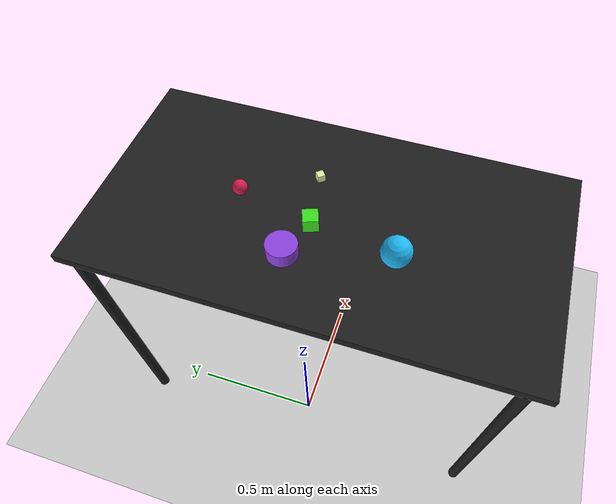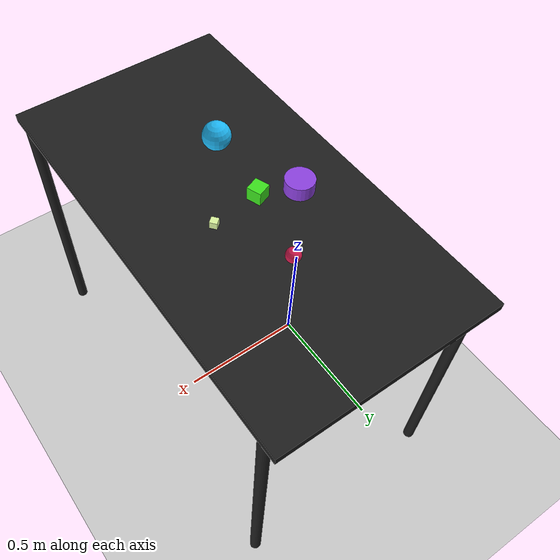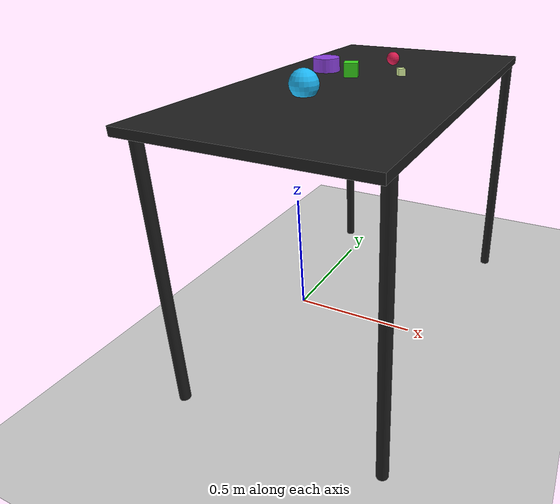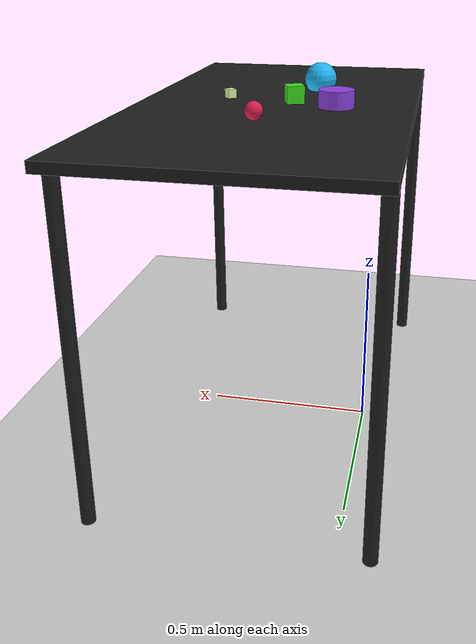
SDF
<?xml version="1.0" ?>
<sdf version="1.6">
  <world name="arm_world">
    <plugin filename="gz-sim-physics-system" name="gz::sim::systems::Physics">
      <engine>
        <filename>libgz-physics-bullet-featherstone-plugin.so</filename>
      </engine>
    </plugin>
    <plugin filename="gz-sim-user-commands-system" name="gz::sim::systems::UserCommands"/>
    <plugin filename="gz-sim-scene-broadcaster-system" name="gz::sim::systems::SceneBroadcaster"/>
    <plugin filename="gz-sim-sensors-system" name="gz::sim::systems::Sensors">
      <render_engine>ogre2</render_engine>
    </plugin>
    <gravity>0.0 0.0 -9.8</gravity>
    <scene>
      <shadows>false</shadows>
    </scene>
    <gui>
      <camera name="user_camera">
        <pose>0.75 -0.75 1.4 0 0.29 2.21</pose>
      </camera>
    </gui>
    <include>
      <uri>https://fuel.gazebosim.org/1.0/OpenRobotics/models/Sun</uri>
    </include>
    <model name="table">
      <static>true</static>
      <include>
        <uri>model://table</uri>
      </include>
      <pose>0.29 0 0 0 0 1.5708</pose>
    </model>
    <model name="ground_plane">
      <static>true</static>
      <link name="link">
        <collision name="collision">
          <geometry>
            <plane>
              <normal>0 0 1</normal>
            </plane>
          </geometry>
          <surface>
            <friction>
              <ode>
                <mu>1.0</mu>
                <mu2>1.0</mu2>
              </ode>
            </friction>
          </surface>
        </collision>
        <visual name="visual">
          <geometry>
            <plane>
              <normal>0 0 1</normal>
              <size>100 100</size>
            </plane>
          </geometry>
          <material>
            <ambient>0.8 0.8 0.8 1</ambient>
            <diffuse>0.8 0.8 0.8 1</diffuse>
            <specular>0.8 0.8 0.8 1</specular>
          </material>
        </visual>
      </link>
    </model>
    <model name="cube_s_0">
      <pose>0.411 0.066 1.05 0 0 0.69</pose>
      <link name="cube_s_0_link">
        <inertial>
          <mass>0.05</mass>
          <inertia>
            <ixx>2.04e-7</ixx>
            <iyy>2.04e-7</iyy>
            <izz>3.9e-8</izz>
            <ixy>0</ixy>
            <ixz>0</ixz>
            <iyz>0</iyz>
          </inertia>
        </inertial>
        <collision name="cube_s_0_collision">
          <geometry>
            <box>
              <size>0.025 0.025 0.025</size>
            </box>
          </geometry>
          <surface>
            <friction>
              <ode>
                <mu>0.8</mu>
                <mu2>0.8</mu2>
                <fdir1>0 0 1</fdir1>
                <slip1>0.001</slip1>
                <slip2>0.001</slip2>
              </ode>
              <torsional>
                <coefficient>0.1</coefficient>
                <surface_radius>0.015</surface_radius>
                <use_patch_radius>true</use_patch_radius>
              </torsional>
            </friction>
            <contact>
              <ode>
                <kp>1e5</kp>
                <kd>10</kd>
                <max_vel>0.1</max_vel>
                <min_depth>0.001</min_depth>
                <soft_cfm>0.01</soft_cfm>
                <soft_erp>0.2</soft_erp>
              </ode>
            </contact>
            <bounce>
              <restitution_coefficient>0.2</restitution_coefficient>
              <threshold>0.01</threshold>
            </bounce>
          </surface>
        </collision>
        <visual name="cube_s_0_visual">
          <geometry>
            <box>
              <size>0.025 0.025 0.025</size>
            </box>
          </geometry>
          <material>
            <ambient>0.87 0.97 0.63 1</ambient>
            <diffuse>0.87 0.97 0.63 1</diffuse>
          </material>
        </visual>
        <velocity_decay>
          <linear>1</linear>
          <angular>1</angular>
        </velocity_decay>
      </link>
    </model>
    <model name="sphere_m_1">
      <pose>0.29 0.296 1.05 0 0 1.64</pose>
      <link name="sphere_m_1_link">
        <inertial>
          <mass>0.05</mass>
          <inertia>
            <ixx>2.04e-7</ixx>
            <iyy>2.04e-7</iyy>
            <izz>3.9e-8</izz>
            <ixy>0</ixy>
            <ixz>0</ixz>
            <iyz>0</iyz>
          </inertia>
        </inertial>
        <collision name="sphere_m_1_collision">
          <geometry>
            <sphere>
              <radius>0.025</radius>
            </sphere>
          </geometry>
          <surface>
            <friction>
              <ode>
                <mu>0.8</mu>
                <mu2>0.8</mu2>
                <fdir1>0 0 1</fdir1>
                <slip1>0.001</slip1>
                <slip2>0.001</slip2>
              </ode>
              <torsional>
                <coefficient>0.1</coefficient>
                <surface_radius>0.015</surface_radius>
                <use_patch_radius>true</use_patch_radius>
              </torsional>
            </friction>
            <contact>
              <ode>
                <kp>1e5</kp>
                <kd>10</kd>
                <max_vel>0.1</max_vel>
                <min_depth>0.001</min_depth>
                <soft_cfm>0.01</soft_cfm>
                <soft_erp>0.2</soft_erp>
              </ode>
            </contact>
            <bounce>
              <restitution_coefficient>0.2</restitution_coefficient>
              <threshold>0.01</threshold>
            </bounce>
          </surface>
        </collision>
        <visual name="sphere_m_1_visual">
          <geometry>
            <sphere>
              <radius>0.025</radius>
            </sphere>
          </geometry>
          <material>
            <ambient>0.86 0.11 0.32 1</ambient>
            <diffuse>0.86 0.11 0.32 1</diffuse>
          </material>
        </visual>
        <velocity_decay>
          <linear>1</linear>
          <angular>1</angular>
        </velocity_decay>
      </link>
    </model>
    <model name="sphere_l_2">
      <pose>0.198 -0.24 1.05 0 0 3.05</pose>
      <link name="sphere_l_2_link">
        <inertial>
          <mass>0.05</mass>
          <inertia>
            <ixx>2.04e-7</ixx>
            <iyy>2.04e-7</iyy>
            <izz>3.9e-8</izz>
            <ixy>0</ixy>
            <ixz>0</ixz>
            <iyz>0</iyz>
          </inertia>
        </inertial>
        <collision name="sphere_l_2_collision">
          <geometry>
            <sphere>
              <radius>0.05</radius>
            </sphere>
          </geometry>
          <surface>
            <friction>
              <ode>
                <mu>0.8</mu>
                <mu2>0.8</mu2>
                <fdir1>0 0 1</fdir1>
                <slip1>0.001</slip1>
                <slip2>0.001</slip2>
              </ode>
              <torsional>
                <coefficient>0.1</coefficient>
                <surface_radius>0.015</surface_radius>
                <use_patch_radius>true</use_patch_radius>
              </torsional>
            </friction>
            <contact>
              <ode>
                <kp>1e5</kp>
                <kd>10</kd>
                <max_vel>0.1</max_vel>
                <min_depth>0.001</min_depth>
                <soft_cfm>0.01</soft_cfm>
                <soft_erp>0.2</soft_erp>
              </ode>
            </contact>
            <bounce>
              <restitution_coefficient>0.2</restitution_coefficient>
              <threshold>0.01</threshold>
            </bounce>
          </surface>
        </collision>
        <visual name="sphere_l_2_visual">
          <geometry>
            <sphere>
              <radius>0.05</radius>
            </sphere>
          </geometry>
          <material>
            <ambient>0.12 0.73 0.97 1</ambient>
            <diffuse>0.12 0.73 0.97 1</diffuse>
          </material>
        </visual>
        <velocity_decay>
          <linear>1</linear>
          <angular>1</angular>
        </velocity_decay>
      </link>
    </model>
    <model name="cube_m_3">
      <pose>0.231 0.039 1.05 0 0 3.5</pose>
      <link name="cube_m_3_link">
        <inertial>
          <mass>0.05</mass>
          <inertia>
            <ixx>2.04e-7</ixx>
            <iyy>2.04e-7</iyy>
            <izz>3.9e-8</izz>
            <ixy>0</ixy>
            <ixz>0</ixz>
            <iyz>0</iyz>
          </inertia>
        </inertial>
        <collision name="cube_m_3_collision">
          <geometry>
            <box>
              <size>0.05 0.05 0.05</size>
            </box>
          </geometry>
          <surface>
            <friction>
              <ode>
                <mu>0.8</mu>
                <mu2>0.8</mu2>
                <fdir1>0 0 1</fdir1>
                <slip1>0.001</slip1>
                <slip2>0.001</slip2>
              </ode>
              <torsional>
                <coefficient>0.1</coefficient>
                <surface_radius>0.015</surface_radius>
                <use_patch_radius>true</use_patch_radius>
              </torsional>
            </friction>
            <contact>
              <ode>
                <kp>1e5</kp>
                <kd>10</kd>
                <max_vel>0.1</max_vel>
                <min_depth>0.001</min_depth>
                <soft_cfm>0.01</soft_cfm>
                <soft_erp>0.2</soft_erp>
              </ode>
            </contact>
            <bounce>
              <restitution_coefficient>0.2</restitution_coefficient>
              <threshold>0.01</threshold>
            </bounce>
          </surface>
        </collision>
        <visual name="cube_m_3_visual">
          <geometry>
            <box>
              <size>0.05 0.05 0.05</size>
            </box>
          </geometry>
          <material>
            <ambient>0.24 0.9 0.12 1</ambient>
            <diffuse>0.24 0.9 0.12 1</diffuse>
          </material>
        </visual>
        <velocity_decay>
          <linear>1</linear>
          <angular>1</angular>
        </velocity_decay>
      </link>
    </model>
    <model name="cylinder_l_4">
      <pose>0.105 0.086 1.05 0 0 5.71</pose>
      <link name="cylinder_l_4_link">
        <inertial>
          <mass>0.05</mass>
          <inertia>
            <ixx>2.04e-7</ixx>
            <iyy>2.04e-7</iyy>
            <izz>3.9e-8</izz>
            <ixy>0</ixy>
            <ixz>0</ixz>
            <iyz>0</iyz>
          </inertia>
        </inertial>
        <collision name="cylinder_l_4_collision">
          <geometry>
            <cylinder>
              <radius>0.05</radius>
              <length>0.05</length>
            </cylinder>
          </geometry>
          <surface>
            <friction>
              <ode>
                <mu>0.8</mu>
                <mu2>0.8</mu2>
                <fdir1>0 0 1</fdir1>
                <slip1>0.001</slip1>
                <slip2>0.001</slip2>
              </ode>
              <torsional>
                <coefficient>0.1</coefficient>
                <surface_radius>0.015</surface_radius>
                <use_patch_radius>true</use_patch_radius>
              </torsional>
            </friction>
            <contact>
              <ode>
                <kp>1e5</kp>
                <kd>10</kd>
                <max_vel>0.1</max_vel>
                <min_depth>0.001</min_depth>
                <soft_cfm>0.01</soft_cfm>
                <soft_erp>0.2</soft_erp>
              </ode>
            </contact>
            <bounce>
              <restitution_coefficient>0.2</restitution_coefficient>
              <threshold>0.01</threshold>
            </bounce>
          </surface>
        </collision>
        <visual name="cylinder_l_4_visual">
          <geometry>
            <cylinder>
              <radius>0.05</radius>
              <length>0.05</length>
            </cylinder>
          </geometry>
          <material>
            <ambient>0.56 0.26 0.89 1</ambient>
            <diffuse>0.56 0.26 0.89 1</diffuse>
          </material>
        </visual>
        <velocity_decay>
          <linear>1</linear>
          <angular>1</angular>
        </velocity_decay>
      </link>
    </model>
  </world>
</sdf>

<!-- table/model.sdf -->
<sdf version="1.5">
  <model name="table">
    <static>true</static>
    <link name="link">
      <collision name="surface">
        <pose>0 0 1.0 0 0 0</pose>
        <geometry>
          <box>
            <size>1.5 0.8 0.03</size>
          </box>
        </geometry>
        <surface>
          <friction>
            <ode>
              <mu>0.6</mu>
              <mu2>0.6</mu2>
            </ode>
          </friction>
        </surface>
      </collision>
      <visual name="surface">
        <pose>0 0 1.0 0 0 0</pose>
        <geometry>
          <box>
            <size>1.5 0.8 0.03</size>
          </box>
        </geometry>
        <material>
          <script>
            <uri>file://media/materials/scripts/gazebo.material</uri>
            <name>Gazebo/Black</name>
          </script>
        </material>
      </visual>
      <collision name="front_left_leg">
        <pose>0.68 0.38 0.5 0 0 0</pose>
        <geometry>
          <cylinder>
            <radius>0.02</radius>
            <length>1.0</length>
          </cylinder>
        </geometry>
      </collision>
      <visual name="front_left_leg">
        <pose>0.68 0.38 0.5 0 0 0</pose>
        <geometry>
          <cylinder>
            <radius>0.02</radius>
            <length>1.0</length>
          </cylinder>
        </geometry>
        <material>
          <script>
            <uri>file://media/materials/scripts/gazebo.material</uri>
            <name>Gazebo/Black</name>
          </script>
        </material>
      </visual>
      <collision name="front_right_leg">
        <pose>0.68 -0.38 0.5 0 0 0</pose>
        <geometry>
          <cylinder>
            <radius>0.02</radius>
            <length>1.0</length>
          </cylinder>
        </geometry>
      </collision>
      <visual name="front_right_leg">
        <pose>0.68 -0.38 0.5 0 0 0</pose>
        <geometry>
          <cylinder>
            <radius>0.02</radius>
            <length>1.0</length>
          </cylinder>
        </geometry>
        <material>
          <script>
            <uri>file://media/materials/scripts/gazebo.material</uri>
            <name>Gazebo/Black</name>
          </script>
        </material>
      </visual>
      <collision name="back_right_leg">
        <pose>-0.68 -0.38 0.5 0 0 0</pose>
        <geometry>
          <cylinder>
            <radius>0.02</radius>
            <length>1.0</length>
          </cylinder>
        </geometry>
      </collision>
      <visual name="back_right_leg">
        <pose>-0.68 -0.38 0.5 0 0 0</pose>
        <geometry>
          <cylinder>
            <radius>0.02</radius>
            <length>1.0</length>
          </cylinder>
        </geometry>
        <material>
          <script>
            <uri>file://media/materials/scripts/gazebo.material</uri>
            <name>Gazebo/Black</name>
          </script>
        </material>
      </visual>
      <collision name="back_left_leg">
        <pose>-0.68 0.38 0.5 0 0 0</pose>
        <geometry>
          <cylinder>
            <radius>0.02</radius>
            <length>1.0</length>
          </cylinder>
        </geometry>
      </collision>
      <visual name="back_left_leg">
        <pose>-0.68 0.38 0.5 0 0 0</pose>
        <geometry>
          <cylinder>
            <radius>0.02</radius>
            <length>1.0</length>
          </cylinder>
        </geometry>
        <material>
          <script>
            <uri>file://media/materials/scripts/gazebo.material</uri>
            <name>Gazebo/Black</name>
          </script>
        </material>
      </visual>
    </link>
  </model>
</sdf>
